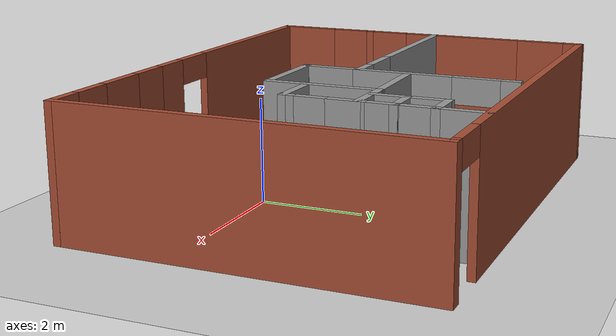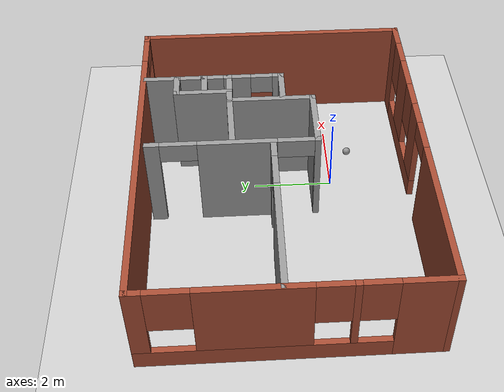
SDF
<sdf version="1.7">
 <world name="default">
  <light name="sun" type="directional">
   <pose>0 0 10 0 -0 0</pose>
   <diffuse>0.8 0.8 0.8 1</diffuse>
   <specular>0.2 0.2 0.2 1</specular>
   <attenuation>
    <range>1000</range>
    <constant>0.9</constant>
    <linear>0.01</linear>
    <quadratic>0.001</quadratic>
   </attenuation>
   <direction>-0.5 0.1 -0.9</direction>
   <spot><inner_angle>0</inner_angle><outer_angle>0</outer_angle><falloff>0</falloff></spot>
  </light>
  <model name="ground_plane">
   <static>1</static>
   <link name="link">
    <collision name="collision">
     <geometry><plane><normal>0 0 1</normal><size>100 100</size></plane></geometry>
     <surface>
      <contact><collide_bitmask>65535</collide_bitmask></contact>
      <friction><ode><mu>100</mu><mu2>50</mu2></ode></friction>
     </surface>
    </collision>
    <visual name="visual">
     <cast_shadows>0</cast_shadows>
     <geometry><plane><normal>0 0 1</normal><size>100 100</size></plane></geometry>
     <material>
      <script><uri>file://media/materials/scripts/gazebo.material</uri><name>Gazebo/Grey</name></script>
     </material>
    </visual>
   </link>
  </model>
  <gravity>0 0 -9.8</gravity>
  <magnetic_field>6e-06 2.3e-05 -4.2e-05</magnetic_field>
  <atmosphere type="adiabatic"/>
  <physics type="ode">
   <max_step_size>0.001</max_step_size>
   <real_time_factor>1</real_time_factor>
   <real_time_update_rate>1000</real_time_update_rate>
  </physics>
  <scene><ambient>0.4 0.4 0.4 1</ambient><background>0.7 0.7 0.7 1</background><shadows>1</shadows></scene>
  <spherical_coordinates>
   <surface_model>EARTH_WGS84</surface_model>
   <latitude_deg>0</latitude_deg>
   <longitude_deg>0</longitude_deg>
   <elevation>0</elevation>
   <heading_deg>0</heading_deg>
  </spherical_coordinates>
  <model name="Building">
   <pose>-0.976512 1.36871 0 0 -0 0</pose>
   <link name="Wall_11">
    <collision name="Wall_11_Collision">
     <geometry><box><size>1 0.15 2.5</size></box></geometry>
     <pose>0 0 1.25 0 -0 0</pose>
    </collision>
    <visual name="Wall_11_Visual">
     <pose>0 0 1.25 0 -0 0</pose>
     <geometry><box><size>1 0.15 2.5</size></box></geometry>
     <material>
      <script><uri>file://media/materials/scripts/gazebo.material</uri><name>Gazebo/Grey</name></script>
      <ambient>1 1 1 1</ambient>
     </material>
     <meta><layer>0</layer></meta>
    </visual>
    <pose>2.54458 2.98678 0 0 -0 -1.5708</pose>
   </link>
   <link name="Wall_12">
    <collision name="Wall_12_Collision">
     <geometry><box><size>0.75 0.15 2.5</size></box></geometry>
     <pose>0 0 1.25 0 -0 0</pose>
    </collision>
    <visual name="Wall_12_Visual">
     <pose>0 0 1.25 0 -0 0</pose>
     <geometry><box><size>0.75 0.15 2.5</size></box></geometry>
     <material>
      <script><uri>file://media/materials/scripts/gazebo.material</uri><name>Gazebo/Grey</name></script>
      <ambient>1 1 1 1</ambient>
     </material>
     <meta><layer>0</layer></meta>
    </visual>
    <pose>2.24458 2.56177 0 0 -0 3.14159</pose>
   </link>
   <link name="Wall_13">
    <collision name="Wall_13_Collision">
     <geometry><box><size>1.5 0.15 2.5</size></box></geometry>
     <pose>0 0 1.25 0 -0 0</pose>
    </collision>
    <visual name="Wall_13_Visual">
     <pose>0 0 1.25 0 -0 0</pose>
     <geometry><box><size>1.5 0.15 2.5</size></box></geometry>
     <material>
      <script><uri>file://media/materials/scripts/gazebo.material</uri><name>Gazebo/Grey</name></script>
      <ambient>1 1 1 1</ambient>
     </material>
     <meta><layer>0</layer></meta>
    </visual>
    <pose>1.94457 1.88678 0 0 -0 -1.5708</pose>
   </link>
   <link name="Wall_14">
    <collision name="Wall_14_Collision">
     <geometry><box><size>0.75 0.15 2.5</size></box></geometry>
     <pose>0 0 1.25 0 -0 0</pose>
    </collision>
    <visual name="Wall_14_Visual">
     <pose>0 0 1.25 0 -0 0</pose>
     <geometry><box><size>0.75 0.15 2.5</size></box></geometry>
     <material>
      <script><uri>file://media/materials/scripts/gazebo.material</uri><name>Gazebo/Grey</name></script>
      <ambient>1 1 1 1</ambient>
     </material>
     <meta><layer>0</layer></meta>
    </visual>
    <pose>2.24458 1.21178 0 0 -0 0</pose>
   </link>
   <link name="Wall_15">
    <pose>2.54458 0.536775 0 0 -0 -1.5708</pose>
    <visual name="Wall_15_Visual_0">
     <pose>-0.432046 0 1.25 0 -0 0</pose>
     <geometry><box><size>0.635909 0.15 2.5</size></box></geometry>
     <material>
      <script><uri>file://media/materials/scripts/gazebo.material</uri><name>Gazebo/Grey</name></script>
      <ambient>1 1 1 1</ambient>
     </material>
     <meta><layer>0</layer></meta>
    </visual>
    <collision name="Wall_15_Collision_0">
     <geometry><box><size>0.635909 0.15 2.5</size></box></geometry>
     <pose>-0.432046 0 1.25 0 -0 0</pose>
    </collision>
    <visual name="Wall_15_Visual_1">
     <pose>0.600658 0 1.25 0 -0 0</pose>
     <geometry><box><size>0.298684 0.15 2.5</size></box></geometry>
     <material>
      <script><uri>file://media/materials/scripts/gazebo.material</uri><name>Gazebo/Grey</name></script>
      <ambient>1 1 1 1</ambient>
     </material>
     <meta><layer>0</layer></meta>
    </visual>
    <collision name="Wall_15_Collision_1">
     <geometry><box><size>0.298684 0.15 2.5</size></box></geometry>
     <pose>0.600658 0 1.25 0 -0 0</pose>
    </collision>
    <visual name="Wall_15_Visual_2">
     <pose>0.168612 0 2.25 0 -0 0</pose>
     <geometry><box><size>0.565408 0.15 0.5</size></box></geometry>
     <material>
      <script><uri>file://media/materials/scripts/gazebo.material</uri><name>Gazebo/Grey</name></script>
      <ambient>1 1 1 1</ambient>
     </material>
     <meta><layer>0</layer></meta>
    </visual>
    <collision name="Wall_15_Collision_2">
     <geometry><box><size>0.565408 0.15 0.5</size></box></geometry>
     <pose>0.168612 0 2.25 0 -0 0</pose>
    </collision>
   </link>
   <link name="Wall_16">
    <collision name="Wall_16_Collision">
     <geometry><box><size>1 0.15 2.5</size></box></geometry>
     <pose>0 0 1.25 0 -0 0</pose>
    </collision>
    <visual name="Wall_16_Visual">
     <pose>0 0 1.25 0 -0 0</pose>
     <geometry><box><size>1 0.15 2.5</size></box></geometry>
     <material>
      <script><uri>file://media/materials/scripts/gazebo.material</uri><name>Gazebo/Grey</name></script>
      <ambient>1 1 1 1</ambient>
     </material>
     <meta><layer>0</layer></meta>
    </visual>
    <pose>2.11958 -0.138225 0 0 -0 3.14159</pose>
   </link>
   <link name="Wall_18">
    <collision name="Wall_18_Collision">
     <geometry><box><size>0.75 0.15 2.5</size></box></geometry>
     <pose>0 0 1.25 0 -0 0</pose>
    </collision>
    <visual name="Wall_18_Visual">
     <pose>0 0 1.25 0 -0 0</pose>
     <geometry><box><size>0.75 0.15 2.5</size></box></geometry>
     <material>
      <script><uri>file://media/materials/scripts/gazebo.material</uri><name>Gazebo/Grey</name></script>
      <ambient>1 1 1 1</ambient>
     </material>
     <meta><layer>0</layer></meta>
    </visual>
    <pose>2.24945 1.85122 0 0 -0 0</pose>
   </link>
   <link name="Wall_20">
    <pose>2.54458 1.88678 0 0 -0 -1.5708</pose>
    <visual name="Wall_20_Visual_0">
     <pose>-0.669571 0 1.25 0 -0 0</pose>
     <geometry><box><size>0.160859 0.15 2.5</size></box></geometry>
     <material>
      <script><uri>file://media/materials/scripts/gazebo.material</uri><name>Gazebo/Grey</name></script>
      <ambient>1 1 1 1</ambient>
     </material>
     <meta><layer>0</layer></meta>
    </visual>
    <collision name="Wall_20_Collision_0">
     <geometry><box><size>0.160859 0.15 2.5</size></box></geometry>
     <pose>-0.669571 0 1.25 0 -0 0</pose>
    </collision>
    <visual name="Wall_20_Visual_1">
     <pose>-0.021274 0 1.25 0 -0 0</pose>
     <geometry><box><size>0.065756 0.15 2.5</size></box></geometry>
     <material>
      <script><uri>file://media/materials/scripts/gazebo.material</uri><name>Gazebo/Grey</name></script>
      <ambient>1 1 1 1</ambient>
     </material>
     <meta><layer>0</layer></meta>
    </visual>
    <collision name="Wall_20_Collision_1">
     <geometry><box><size>0.065756 0.15 2.5</size></box></geometry>
     <pose>-0.021274 0 1.25 0 -0 0</pose>
    </collision>
    <visual name="Wall_20_Visual_2">
     <pose>0.640693 0 1.25 0 -0 0</pose>
     <geometry><box><size>0.218615 0.15 2.5</size></box></geometry>
     <material>
      <script><uri>file://media/materials/scripts/gazebo.material</uri><name>Gazebo/Grey</name></script>
      <ambient>1 1 1 1</ambient>
     </material>
     <meta><layer>0</layer></meta>
    </visual>
    <collision name="Wall_20_Collision_2">
     <geometry><box><size>0.218615 0.15 2.5</size></box></geometry>
     <pose>0.640693 0 1.25 0 -0 0</pose>
    </collision>
    <visual name="Wall_20_Visual_3">
     <pose>-0.321646 0 2.25 0 -0 0</pose>
     <geometry><box><size>0.53499 0.15 0.5</size></box></geometry>
     <material>
      <script><uri>file://media/materials/scripts/gazebo.material</uri><name>Gazebo/Grey</name></script>
      <ambient>1 1 1 1</ambient>
     </material>
     <meta><layer>0</layer></meta>
    </visual>
    <collision name="Wall_20_Collision_3">
     <geometry><box><size>0.53499 0.15 0.5</size></box></geometry>
     <pose>-0.321646 0 2.25 0 -0 0</pose>
    </collision>
    <visual name="Wall_20_Visual_4">
     <pose>0.271495 0 2.25 0 -0 0</pose>
     <geometry><box><size>0.519781 0.15 0.5</size></box></geometry>
     <material>
      <script><uri>file://media/materials/scripts/gazebo.material</uri><name>Gazebo/Grey</name></script>
      <ambient>1 1 1 1</ambient>
     </material>
     <meta><layer>0</layer></meta>
    </visual>
    <collision name="Wall_20_Collision_4">
     <geometry><box><size>0.519781 0.15 0.5</size></box></geometry>
     <pose>0.271495 0 2.25 0 -0 0</pose>
    </collision>
   </link>
   <link name="Wall_22">
    <collision name="Wall_22_Collision">
     <geometry><box><size>0.5 0.15 2.5</size></box></geometry>
     <pose>0 0 1.25 0 -0 0</pose>
    </collision>
    <visual name="Wall_22_Visual">
     <pose>0 0 1.25 0 -0 0</pose>
     <geometry><box><size>0.5 0.15 2.5</size></box></geometry>
     <material>
      <script><uri>file://media/materials/scripts/gazebo.material</uri><name>Gazebo/Grey</name></script>
      <ambient>1 1 1 1</ambient>
     </material>
     <meta><layer>0</layer></meta>
    </visual>
    <pose>1.76957 1.21178 0 0 -0 3.14159</pose>
   </link>
   <link name="Wall_27">
    <collision name="Wall_27_Collision">
     <geometry><box><size>2.25 0.15 2.5</size></box></geometry>
     <pose>0 0 1.25 0 -0 0</pose>
    </collision>
    <visual name="Wall_27_Visual">
     <pose>0 0 1.25 0 -0 0</pose>
     <geometry><box><size>2.25 0.15 2.5</size></box></geometry>
     <material>
      <script><uri>file://media/materials/scripts/gazebo.material</uri><name>Gazebo/Grey</name></script>
      <ambient>1 1 1 1</ambient>
     </material>
     <meta><layer>0</layer></meta>
    </visual>
    <pose>1.59458 0.161775 0 0 -0 -1.5708</pose>
   </link>
   <link name="Wall_28">
    <collision name="Wall_28_Collision">
     <geometry><box><size>1.75 0.15 2.5</size></box></geometry>
     <pose>0 0 1.25 0 -0 0</pose>
    </collision>
    <visual name="Wall_28_Visual">
     <pose>0 0 1.25 0 -0 0</pose>
     <geometry><box><size>1.75 0.15 2.5</size></box></geometry>
     <material>
      <script><uri>file://media/materials/scripts/gazebo.material</uri><name>Gazebo/Grey</name></script>
      <ambient>1 1 1 1</ambient>
     </material>
     <meta><layer>0</layer></meta>
    </visual>
    <pose>0.794575 -0.888225 0 0 -0 3.14159</pose>
   </link>
   <link name="Wall_29">
    <pose>-0.005425 1.16178 0 0 -0 1.5708</pose>
    <visual name="Wall_29_Visual_0">
     <pose>-2.04932 0 1.25 0 -0 0</pose>
     <geometry><box><size>0.151368 0.15 2.5</size></box></geometry>
     <material>
      <script><uri>file://media/materials/scripts/gazebo.material</uri><name>Gazebo/Grey</name></script>
      <ambient>1 1 1 1</ambient>
     </material>
     <meta><layer>0</layer></meta>
    </visual>
    <collision name="Wall_29_Collision_0">
     <geometry><box><size>0.151368 0.15 2.5</size></box></geometry>
     <pose>-2.04932 0 1.25 0 -0 0</pose>
    </collision>
    <visual name="Wall_29_Visual_1">
     <pose>-0.109219 0 1.25 0 -0 0</pose>
     <geometry><box><size>1.92883 0.15 2.5</size></box></geometry>
     <material>
      <script><uri>file://media/materials/scripts/gazebo.material</uri><name>Gazebo/Grey</name></script>
      <ambient>1 1 1 1</ambient>
     </material>
     <meta><layer>0</layer></meta>
    </visual>
    <collision name="Wall_29_Collision_1">
     <geometry><box><size>1.92883 0.15 2.5</size></box></geometry>
     <pose>-0.109219 0 1.25 0 -0 0</pose>
    </collision>
    <visual name="Wall_29_Visual_2">
     <pose>1.9401 0 1.25 0 -0 0</pose>
     <geometry><box><size>0.369805 0.15 2.5</size></box></geometry>
     <material>
      <script><uri>file://media/materials/scripts/gazebo.material</uri><name>Gazebo/Grey</name></script>
      <ambient>1 1 1 1</ambient>
     </material>
     <meta><layer>0</layer></meta>
    </visual>
    <collision name="Wall_29_Collision_2">
     <geometry><box><size>0.369805 0.15 2.5</size></box></geometry>
     <pose>1.9401 0 1.25 0 -0 0</pose>
    </collision>
    <visual name="Wall_29_Visual_3">
     <pose>-1.52363 0 2.25 0 -0 0</pose>
     <geometry><box><size>0.9 0.15 0.5</size></box></geometry>
     <material>
      <script><uri>file://media/materials/scripts/gazebo.material</uri><name>Gazebo/Grey</name></script>
      <ambient>1 1 1 1</ambient>
     </material>
     <meta><layer>0</layer></meta>
    </visual>
    <collision name="Wall_29_Collision_3">
     <geometry><box><size>0.9 0.15 0.5</size></box></geometry>
     <pose>-1.52363 0 2.25 0 -0 0</pose>
    </collision>
    <visual name="Wall_29_Visual_4">
     <pose>1.3052 0 2.25 0 -0 0</pose>
     <geometry><box><size>0.9 0.15 0.5</size></box></geometry>
     <material>
      <script><uri>file://media/materials/scripts/gazebo.material</uri><name>Gazebo/Grey</name></script>
      <ambient>1 1 1 1</ambient>
     </material>
     <meta><layer>0</layer></meta>
    </visual>
    <collision name="Wall_29_Collision_4">
     <geometry><box><size>0.9 0.15 0.5</size></box></geometry>
     <pose>1.3052 0 2.25 0 -0 0</pose>
    </collision>
   </link>
   <link name="Wall_31">
    <pose>-2.22677 0.188172 0 0 -0 0</pose>
    <visual name="Wall_31_Visual_0">
     <pose>-0.736193 0 1.25 0 -0 0</pose>
     <geometry><box><size>3.02761 0.15 2.5</size></box></geometry>
     <material>
      <script><uri>file://media/materials/scripts/gazebo.material</uri><name>Gazebo/Grey</name></script>
      <ambient>1 1 1 1</ambient>
     </material>
     <meta><layer>0</layer></meta>
    </visual>
    <collision name="Wall_31_Collision_0">
     <geometry><box><size>3.02761 0.15 2.5</size></box></geometry>
     <pose>-0.736193 0 1.25 0 -0 0</pose>
    </collision>
    <visual name="Wall_31_Visual_1">
     <pose>1.96381 0 1.25 0 -0 0</pose>
     <geometry><box><size>0.572386 0.15 2.5</size></box></geometry>
     <material>
      <script><uri>file://media/materials/scripts/gazebo.material</uri><name>Gazebo/Grey</name></script>
      <ambient>1 1 1 1</ambient>
     </material>
     <meta><layer>0</layer></meta>
    </visual>
    <collision name="Wall_31_Collision_1">
     <geometry><box><size>0.572386 0.15 2.5</size></box></geometry>
     <pose>1.96381 0 1.25 0 -0 0</pose>
    </collision>
    <visual name="Wall_31_Visual_2">
     <pose>1.22761 0 2.25 0 -0 0</pose>
     <geometry><box><size>0.9 0.15 0.5</size></box></geometry>
     <material>
      <script><uri>file://media/materials/scripts/gazebo.material</uri><name>Gazebo/Grey</name></script>
      <ambient>1 1 1 1</ambient>
     </material>
     <meta><layer>0</layer></meta>
    </visual>
    <collision name="Wall_31_Collision_2">
     <geometry><box><size>0.9 0.15 0.5</size></box></geometry>
     <pose>1.22761 0 2.25 0 -0 0</pose>
    </collision>
   </link>
   <link name="Wall_33">
    <collision name="Wall_33_Collision">
     <geometry><box><size>1.7121 0.15 2.5</size></box></geometry>
     <pose>0 0 1.25 0 -0 0</pose>
    </collision>
    <visual name="Wall_33_Visual">
     <pose>0 0 1.25 0 -0 0</pose>
     <geometry><box><size>1.7121 0.15 2.5</size></box></geometry>
     <material>
      <script><uri>file://media/materials/scripts/gazebo.material</uri><name>Gazebo/Grey</name></script>
      <ambient>1 1 1 1</ambient>
     </material>
     <meta><layer>0</layer></meta>
    </visual>
    <pose>0.813792 1.19128 0 0 -0 0.026246</pose>
   </link>
   <link name="Wall_6">
    <pose>-0 3.425 0 0 -0 0</pose>
    <visual name="Wall_6_Visual_0">
     <pose>-0.576234 0 1.25 0 -0 0</pose>
     <geometry><box><size>7.84753 0.15 2.5</size></box></geometry>
     <material>
      <script><uri>file://media/materials/scripts/gazebo.material</uri><name>Gazebo/Bricks</name></script>
      <ambient>1 1 1 1</ambient>
     </material>
     <meta><layer>0</layer></meta>
    </visual>
    <collision name="Wall_6_Collision_0">
     <geometry><box><size>7.84753 0.15 2.5</size></box></geometry>
     <pose>-0.576234 0 1.25 0 -0 0</pose>
    </collision>
    <visual name="Wall_6_Visual_1">
     <pose>4.37377 0 1.25 0 -0 0</pose>
     <geometry><box><size>0.252468 0.15 2.5</size></box></geometry>
     <material>
      <script><uri>file://media/materials/scripts/gazebo.material</uri><name>Gazebo/Bricks</name></script>
      <ambient>1 1 1 1</ambient>
     </material>
     <meta><layer>0</layer></meta>
    </visual>
    <collision name="Wall_6_Collision_1">
     <geometry><box><size>0.252468 0.15 2.5</size></box></geometry>
     <pose>4.37377 0 1.25 0 -0 0</pose>
    </collision>
    <visual name="Wall_6_Visual_2">
     <pose>3.79753 0 2.25 0 -0 0</pose>
     <geometry><box><size>0.9 0.15 0.5</size></box></geometry>
     <material>
      <script><uri>file://media/materials/scripts/gazebo.material</uri><name>Gazebo/Bricks</name></script>
      <ambient>1 1 1 1</ambient>
     </material>
     <meta><layer>0</layer></meta>
    </visual>
    <collision name="Wall_6_Collision_2">
     <geometry><box><size>0.9 0.15 0.5</size></box></geometry>
     <pose>3.79753 0 2.25 0 -0 0</pose>
    </collision>
   </link>
   <link name="Wall_7">
    <collision name="Wall_7_Collision">
     <geometry><box><size>7 0.15 2.5</size></box></geometry>
     <pose>0 0 1.25 0 -0 0</pose>
    </collision>
    <visual name="Wall_7_Visual">
     <pose>0 0 1.25 0 -0 0</pose>
     <geometry><box><size>7 0.15 2.5</size></box></geometry>
     <material>
      <script><uri>file://media/materials/scripts/gazebo.material</uri><name>Gazebo/Bricks</name></script>
      <ambient>1 1 1 1</ambient>
     </material>
     <meta><layer>0</layer></meta>
    </visual>
    <pose>4.425 -0 0 0 -0 -1.5708</pose>
   </link>
   <link name="Wall_8">
    <pose>-0 -3.425 0 0 -0 3.14159</pose>
    <visual name="Wall_8_Visual_0">
     <pose>-4.13288 0 1.25 0 -0 0</pose>
     <geometry><box><size>0.734248 0.15 2.5</size></box></geometry>
     <material>
      <script><uri>file://media/materials/scripts/gazebo.material</uri><name>Gazebo/Bricks</name></script>
      <ambient>1 1 1 1</ambient>
     </material>
     <meta><layer>0</layer></meta>
    </visual>
    <collision name="Wall_8_Collision_0">
     <geometry><box><size>0.734248 0.15 2.5</size></box></geometry>
     <pose>-4.13288 0 1.25 0 -0 0</pose>
    </collision>
    <visual name="Wall_8_Visual_1">
     <pose>2.48029 0 1.25 0 -0 0</pose>
     <geometry><box><size>4.03941 0.15 2.5</size></box></geometry>
     <material>
      <script><uri>file://media/materials/scripts/gazebo.material</uri><name>Gazebo/Bricks</name></script>
      <ambient>1 1 1 1</ambient>
     </material>
     <meta><layer>0</layer></meta>
    </visual>
    <collision name="Wall_8_Collision_1">
     <geometry><box><size>4.03941 0.15 2.5</size></box></geometry>
     <pose>2.48029 0 1.25 0 -0 0</pose>
    </collision>
    <visual name="Wall_8_Visual_2">
     <pose>-2.10258 0 0.25 0 -0 0</pose>
     <geometry><box><size>3.32634 0.15 0.5</size></box></geometry>
     <material>
      <script><uri>file://media/materials/scripts/gazebo.material</uri><name>Gazebo/Bricks</name></script>
      <ambient>1 1 1 1</ambient>
     </material>
     <meta><layer>0</layer></meta>
    </visual>
    <collision name="Wall_8_Collision_2">
     <geometry><box><size>3.32634 0.15 0.5</size></box></geometry>
     <pose>-2.10258 0 0.25 0 -0 0</pose>
    </collision>
    <visual name="Wall_8_Visual_3">
     <pose>-2.46844 0 1.5 0 -0 0</pose>
     <geometry><box><size>0.994633 0.15 2</size></box></geometry>
     <material>
      <script><uri>file://media/materials/scripts/gazebo.material</uri><name>Gazebo/Bricks</name></script>
      <ambient>1 1 1 1</ambient>
     </material>
     <meta><layer>0</layer></meta>
    </visual>
    <collision name="Wall_8_Collision_3">
     <geometry><box><size>0.994633 0.15 2</size></box></geometry>
     <pose>-2.46844 0 1.5 0 -0 0</pose>
    </collision>
    <visual name="Wall_8_Visual_4">
     <pose>-0.805265 0 1.5 0 -0 0</pose>
     <geometry><box><size>0.73171 0.15 2</size></box></geometry>
     <material>
      <script><uri>file://media/materials/scripts/gazebo.material</uri><name>Gazebo/Bricks</name></script>
      <ambient>1 1 1 1</ambient>
     </material>
     <meta><layer>0</layer></meta>
    </visual>
    <collision name="Wall_8_Collision_4">
     <geometry><box><size>0.73171 0.15 2</size></box></geometry>
     <pose>-0.805265 0 1.5 0 -0 0</pose>
    </collision>
    <visual name="Wall_8_Visual_5">
     <pose>-3.36575 0 1.9 0 -0 0</pose>
     <geometry><box><size>0.8 0.15 1.2</size></box></geometry>
     <material>
      <script><uri>file://media/materials/scripts/gazebo.material</uri><name>Gazebo/Bricks</name></script>
      <ambient>1 1 1 1</ambient>
     </material>
     <meta><layer>0</layer></meta>
    </visual>
    <collision name="Wall_8_Collision_5">
     <geometry><box><size>0.8 0.15 1.2</size></box></geometry>
     <pose>-3.36575 0 1.9 0 -0 0</pose>
    </collision>
    <visual name="Wall_8_Visual_6">
     <pose>-1.57112 0 1.9 0 -0 0</pose>
     <geometry><box><size>0.8 0.15 1.2</size></box></geometry>
     <material>
      <script><uri>file://media/materials/scripts/gazebo.material</uri><name>Gazebo/Bricks</name></script>
      <ambient>1 1 1 1</ambient>
     </material>
     <meta><layer>0</layer></meta>
    </visual>
    <collision name="Wall_8_Collision_6">
     <geometry><box><size>0.8 0.15 1.2</size></box></geometry>
     <pose>-1.57112 0 1.9 0 -0 0</pose>
    </collision>
    <visual name="Wall_8_Visual_7">
     <pose>0.01059 0 2.25 0 -0 0</pose>
     <geometry><box><size>0.9 0.15 0.5</size></box></geometry>
     <material>
      <script><uri>file://media/materials/scripts/gazebo.material</uri><name>Gazebo/Bricks</name></script>
      <ambient>1 1 1 1</ambient>
     </material>
     <meta><layer>0</layer></meta>
    </visual>
    <collision name="Wall_8_Collision_7">
     <geometry><box><size>0.9 0.15 0.5</size></box></geometry>
     <pose>0.01059 0 2.25 0 -0 0</pose>
    </collision>
   </link>
   <link name="Wall_9">
    <pose>-4.425 -0 0 0 -0 1.5708</pose>
    <visual name="Wall_9_Visual_0">
     <pose>-2.85334 0 1.25 0 -0 0</pose>
     <geometry><box><size>1.29331 0.15 2.5</size></box></geometry>
     <material>
      <script><uri>file://media/materials/scripts/gazebo.material</uri><name>Gazebo/Bricks</name></script>
      <ambient>1 1 1 1</ambient>
     </material>
     <meta><layer>0</layer></meta>
    </visual>
    <collision name="Wall_9_Collision_0">
     <geometry><box><size>1.29331 0.15 2.5</size></box></geometry>
     <pose>-2.85334 0 1.25 0 -0 0</pose>
    </collision>
    <visual name="Wall_9_Visual_1">
     <pose>0.646656 0 0.25 0 -0 0</pose>
     <geometry><box><size>5.70669 0.15 0.5</size></box></geometry>
     <material>
      <script><uri>file://media/materials/scripts/gazebo.material</uri><name>Gazebo/Bricks</name></script>
      <ambient>1 1 1 1</ambient>
     </material>
     <meta><layer>0</layer></meta>
    </visual>
    <collision name="Wall_9_Collision_1">
     <geometry><box><size>5.70669 0.15 0.5</size></box></geometry>
     <pose>0.646656 0 0.25 0 -0 0</pose>
    </collision>
    <visual name="Wall_9_Visual_2">
     <pose>-1.32761 0 1.5 0 -0 0</pose>
     <geometry><box><size>0.158151 0.15 2</size></box></geometry>
     <material>
      <script><uri>file://media/materials/scripts/gazebo.material</uri><name>Gazebo/Bricks</name></script>
      <ambient>1 1 1 1</ambient>
     </material>
     <meta><layer>0</layer></meta>
    </visual>
    <collision name="Wall_9_Collision_2">
     <geometry><box><size>0.158151 0.15 2</size></box></geometry>
     <pose>-1.32761 0 1.5 0 -0 0</pose>
    </collision>
    <visual name="Wall_9_Visual_3">
     <pose>0.824425 0 1.5 0 -0 0</pose>
     <geometry><box><size>2.54592 0.15 2</size></box></geometry>
     <material>
      <script><uri>file://media/materials/scripts/gazebo.material</uri><name>Gazebo/Bricks</name></script>
      <ambient>1 1 1 1</ambient>
     </material>
     <meta><layer>0</layer></meta>
    </visual>
    <collision name="Wall_9_Collision_3">
     <geometry><box><size>2.54592 0.15 2</size></box></geometry>
     <pose>0.824425 0 1.5 0 -0 0</pose>
    </collision>
    <visual name="Wall_9_Visual_4">
     <pose>3.28995 0 1.5 0 -0 0</pose>
     <geometry><box><size>0.420107 0.15 2</size></box></geometry>
     <material>
      <script><uri>file://media/materials/scripts/gazebo.material</uri><name>Gazebo/Bricks</name></script>
      <ambient>1 1 1 1</ambient>
     </material>
     <meta><layer>0</layer></meta>
    </visual>
    <collision name="Wall_9_Collision_4">
     <geometry><box><size>0.420107 0.15 2</size></box></geometry>
     <pose>3.28995 0 1.5 0 -0 0</pose>
    </collision>
    <visual name="Wall_9_Visual_5">
     <pose>-1.80669 0 1.9 0 -0 0</pose>
     <geometry><box><size>0.8 0.15 1.2</size></box></geometry>
     <material>
      <script><uri>file://media/materials/scripts/gazebo.material</uri><name>Gazebo/Bricks</name></script>
      <ambient>1 1 1 1</ambient>
     </material>
     <meta><layer>0</layer></meta>
    </visual>
    <collision name="Wall_9_Collision_5">
     <geometry><box><size>0.8 0.15 1.2</size></box></geometry>
     <pose>-1.80669 0 1.9 0 -0 0</pose>
    </collision>
    <visual name="Wall_9_Visual_6">
     <pose>-0.848537 0 1.9 0 -0 0</pose>
     <geometry><box><size>0.8 0.15 1.2</size></box></geometry>
     <material>
      <script><uri>file://media/materials/scripts/gazebo.material</uri><name>Gazebo/Bricks</name></script>
      <ambient>1 1 1 1</ambient>
     </material>
     <meta><layer>0</layer></meta>
    </visual>
    <collision name="Wall_9_Collision_6">
     <geometry><box><size>0.8 0.15 1.2</size></box></geometry>
     <pose>-0.848537 0 1.9 0 -0 0</pose>
    </collision>
    <visual name="Wall_9_Visual_7">
     <pose>2.58864 0 1.9 0 -0 0</pose>
     <geometry><box><size>0.982505 0.15 1.2</size></box></geometry>
     <material>
      <script><uri>file://media/materials/scripts/gazebo.material</uri><name>Gazebo/Bricks</name></script>
      <ambient>1 1 1 1</ambient>
     </material>
     <meta><layer>0</layer></meta>
    </visual>
    <collision name="Wall_9_Collision_7">
     <geometry><box><size>0.982505 0.15 1.2</size></box></geometry>
     <pose>2.58864 0 1.9 0 -0 0</pose>
    </collision>
   </link>
   <static>1</static>
  </model>
  <model name="my_ball">
   <link name="link">
    <inertial>
     <mass>0.0566427</mass>
     <inertia>
      <ixx>0.00083535</ixx>
      <ixy>0</ixy>
      <ixz>0</ixz>
      <iyy>0.00083535</iyy>
      <iyz>0</iyz>
      <izz>0.00083535</izz>
     </inertia>
    </inertial>
    <visual name="visual">
     <geometry><sphere><radius>0.1</radius></sphere></geometry>
     <material>
      <script><name>Gazebo/Grey</name><uri>file://media/materials/scripts/gazebo.material</uri></script>
      <shader type="pixel"><normal_map>__default__</normal_map></shader>
      <ambient>1 1 1 1</ambient>
      <diffuse>1 1 1 1</diffuse>
      <specular>1 1 1 1</specular>
      <emissive>1 1 1 1</emissive>
     </material>
    </visual>
    <collision name="collision">
     <geometry><sphere><radius>0.1</radius></sphere></geometry>
     <surface>
      <friction>
       <ode><mu>1</mu><mu2>1</mu2><fdir1>0 0 0</fdir1><slip1>0</slip1><slip2>0</slip2></ode>
       <torsional>
        <coefficient>1</coefficient>
        <patch_radius>0</patch_radius>
        <surface_radius>0</surface_radius>
        <use_patch_radius>1</use_patch_radius>
        <ode><slip>0</slip></ode>
       </torsional>
      </friction>
      <bounce><restitution_coefficient>0</restitution_coefficient><threshold>1e+06</threshold></bounce>
      <contact>
       <collide_without_contact>0</collide_without_contact>
       <collide_without_contact_bitmask>1</collide_without_contact_bitmask>
       <collide_bitmask>1</collide_bitmask>
       <ode>
        <soft_cfm>0</soft_cfm>
        <soft_erp>0.2</soft_erp>
        <kp>1e+13</kp>
        <kd>1</kd>
        <max_vel>0.01</max_vel>
        <min_depth>0</min_depth>
       </ode>
       <bullet>
        <split_impulse>1</split_impulse>
        <split_impulse_penetration_threshold>-0.01</split_impulse_penetration_threshold>
        <soft_cfm>0</soft_cfm>
        <soft_erp>0.2</soft_erp>
        <kp>1e+13</kp>
        <kd>1</kd>
       </bullet>
      </contact>
     </surface>
    </collision>
   </link>
   <static>0</static>
   <pose>1.13362 -0.566006 0.1 0 -0 0</pose>
  </model>
 </world>
</sdf>
